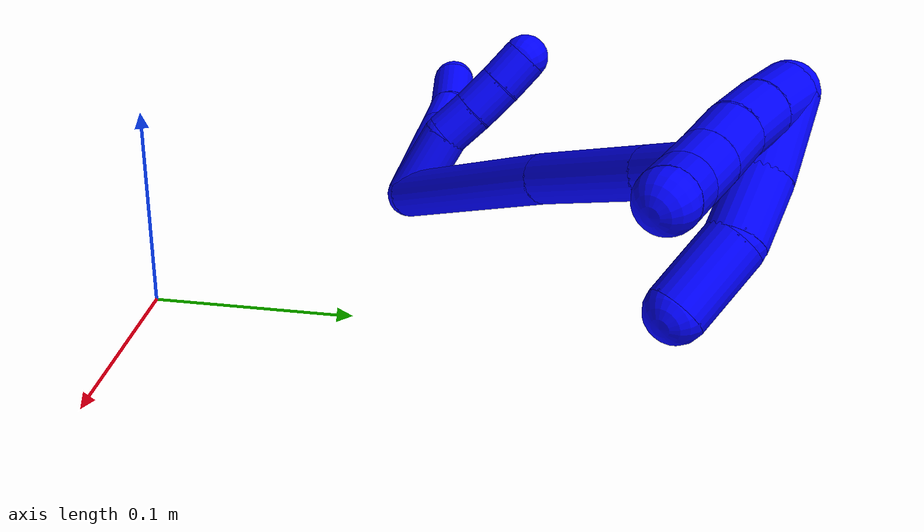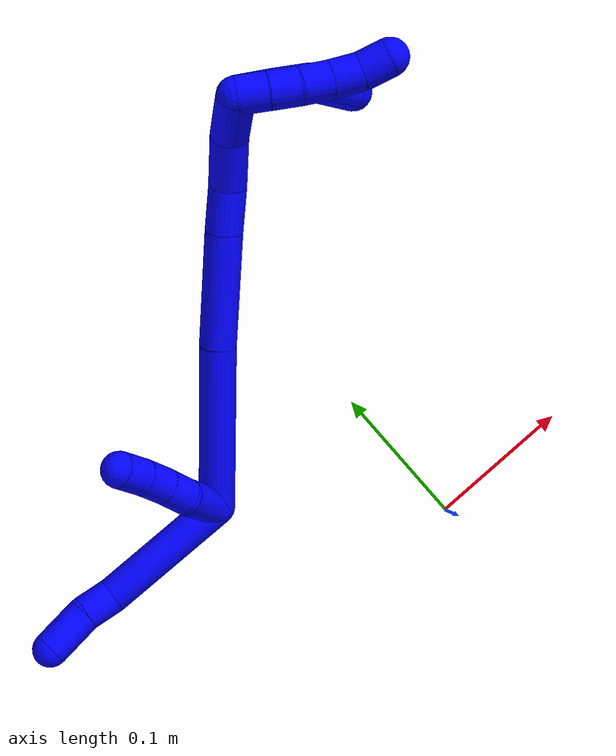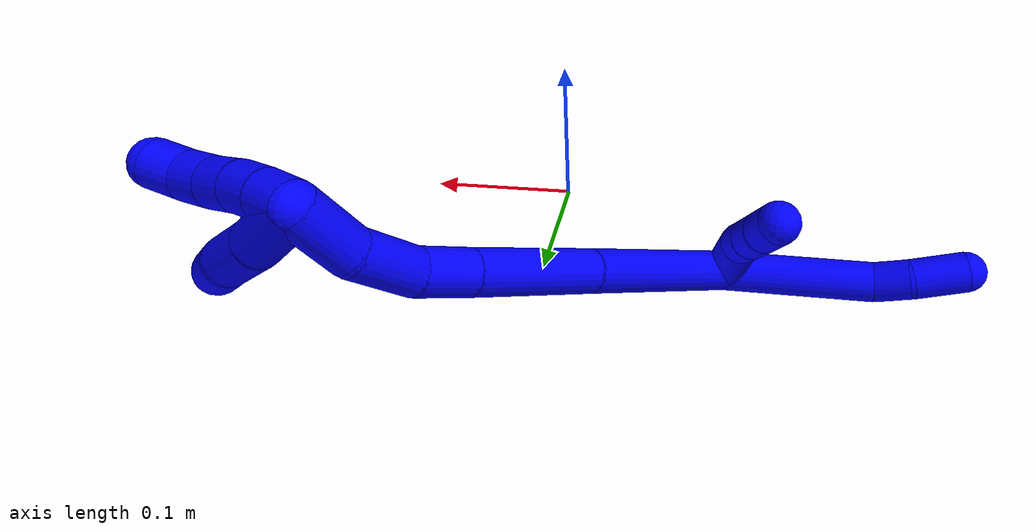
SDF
<sdf version="1.7">
 <world name="default">
  <model name="photoneo_s_sensor">
   <static>1</static>
   <pose>0 0 2 1.57079 1.57079 3.14159</pose>
   <link name="link">
    <inertial><mass>0.1</mass></inertial>
    <sensor name="sensor" type="depth">
     <update_rate>30</update_rate>
     <camera>
      <horizontal_fov>1.22</horizontal_fov>
      <image><width>1920</width><height>1200</height><format>B8G8R8</format></image>
      <clip><near>0.1</near><far>4</far></clip>
      <depth_camera><output>points</output></depth_camera>
     </camera>
     <plugin name="camera_plugin" filename="libgazebo_ros_depth_camera.so">
      <baseline>0.2</baseline>
      <alwaysOn>1</alwaysOn>
      <updateRate>0.0</updateRate>
      <cameraName>camera_ir</cameraName>
      <imageTopicName>/camera/color/image_raw</imageTopicName>
      <cameraInfoTopicName>/camera/color/camera_info</cameraInfoTopicName>
      <depthImageTopicName>/camera/depth/image_raw</depthImageTopicName>
      <depthImageCameraInfoTopicName>/camera/depth/camera_info</depthImageCameraInfoTopicName>
      <pointCloudTopicName>/camera/depth/points</pointCloudTopicName>
      <frameName>fr_optical</frameName>
      <pointCloudCutoff>0.1</pointCloudCutoff>
      <pointCloudCutoffMax>2.0</pointCloudCutoffMax>
      <distortionK1>0</distortionK1>
      <distortionK2>0</distortionK2>
      <distortionK3>0</distortionK3>
      <distortionT1>0</distortionT1>
      <distortionT2>0</distortionT2>
      <CxPrime>0</CxPrime>
      <Cx>0</Cx>
      <Cy>0</Cy>
      <focalLength>0</focalLength>
      <hackBaseline>0</hackBaseline>
     </plugin>
    </sensor>
   </link>
  </model>
  <model name="1">
   <static>0</static>
   <link name="1">
    <collision name="collision-cylinder-e_1_2_8">
     <pose>-0.021162 0.00352 0.041958 -0.083696 -0.465716 0.01986</pose>
     <geometry><cylinder><radius>0.0125</radius><length>0.094248</length></cylinder></geometry>
     <surface>
      <friction><ode><mu>1.16</mu><mu2>1.16</mu2><slip1>0</slip1><slip2>0</slip2></ode></friction>
      <contact><ode><kp>1e+06</kp><kd>1</kd><max_vel>0</max_vel><min_depth>0.001</min_depth></ode></contact>
     </surface>
    </collision>
    <visual name="visual-cylinder-e_1_2_8">
     <pose>-0.021162 0.00352 0.041958 -0.083696 -0.465716 0.01986</pose>
     <geometry><cylinder><radius>0.0125</radius><length>0.094248</length></cylinder></geometry>
     <material><ambient>0 0 1 1</ambient></material>
    </visual>
    <collision name="collision-cylinder-e_2_8_9">
     <pose>-0.045723 0.005019 0.09462 0.186563 -0.302492 -0.028515</pose>
     <geometry><cylinder><radius>0.0125</radius><length>0.022824</length></cylinder></geometry>
     <surface>
      <friction><ode><mu>1.16</mu><mu2>1.16</mu2><slip1>0</slip1><slip2>0</slip2></ode></friction>
      <contact><ode><kp>1e+06</kp><kd>1</kd><max_vel>0</max_vel><min_depth>0.001</min_depth></ode></contact>
     </surface>
    </collision>
    <visual name="visual-cylinder-e_2_8_9">
     <pose>-0.045723 0.005019 0.09462 0.186563 -0.302492 -0.028515</pose>
     <geometry><cylinder><radius>0.0125</radius><length>0.022824</length></cylinder></geometry>
     <material><ambient>0 0 1 1</ambient></material>
    </visual>
    <collision name="collision-cylinder-e_3_9_6">
     <pose>-0.057616 0.000915 0.119275 0.148234 -0.542016 -0.041256</pose>
     <geometry><cylinder><radius>0.0125</radius><length>0.032928</length></cylinder></geometry>
     <surface>
      <friction><ode><mu>1.16</mu><mu2>1.16</mu2><slip1>0</slip1><slip2>0</slip2></ode></friction>
      <contact><ode><kp>1e+06</kp><kd>1</kd><max_vel>0</max_vel><min_depth>0.001</min_depth></ode></contact>
     </surface>
    </collision>
    <visual name="visual-cylinder-e_3_9_6">
     <pose>-0.057616 0.000915 0.119275 0.148234 -0.542016 -0.041256</pose>
     <geometry><cylinder><radius>0.0125</radius><length>0.032928</length></cylinder></geometry>
     <material><ambient>0 0 1 1</ambient></material>
    </visual>
    <collision name="collision-cylinder-e_1_2_10">
     <pose>0.007877 -0.014712 0.010395 0.955661 0.412234 0.215713</pose>
     <geometry><cylinder><radius>0.0125</radius><length>0.039321</length></cylinder></geometry>
     <surface>
      <friction><ode><mu>1.16</mu><mu2>1.16</mu2><slip1>0</slip1><slip2>0</slip2></ode></friction>
      <contact><ode><kp>1e+06</kp><kd>1</kd><max_vel>0</max_vel><min_depth>0.001</min_depth></ode></contact>
     </surface>
    </collision>
    <visual name="visual-cylinder-e_1_2_10">
     <pose>0.007877 -0.014712 0.010395 0.955661 0.412234 0.215713</pose>
     <geometry><cylinder><radius>0.0125</radius><length>0.039321</length></cylinder></geometry>
     <material><ambient>0 0 1 1</ambient></material>
    </visual>
    <collision name="collision-cylinder-e_2_10_11">
     <pose>0.02157 -0.034638 0.0272 0.682989 0.613322 0.224144</pose>
     <geometry><cylinder><radius>0.0125</radius><length>0.020208</length></cylinder></geometry>
     <surface>
      <friction><ode><mu>1.16</mu><mu2>1.16</mu2><slip1>0</slip1><slip2>0</slip2></ode></friction>
      <contact><ode><kp>1e+06</kp><kd>1</kd><max_vel>0</max_vel><min_depth>0.001</min_depth></ode></contact>
     </surface>
    </collision>
    <visual name="visual-cylinder-e_2_10_11">
     <pose>0.02157 -0.034638 0.0272 0.682989 0.613322 0.224144</pose>
     <geometry><cylinder><radius>0.0125</radius><length>0.020208</length></cylinder></geometry>
     <material><ambient>0 0 1 1</ambient></material>
    </visual>
    <collision name="collision-cylinder-e_3_11_12">
     <pose>0.032713 -0.045385 0.040315 0.68975 0.549722 0.201916</pose>
     <geometry><cylinder><radius>0.0125</radius><length>0.020391</length></cylinder></geometry>
     <surface>
      <friction><ode><mu>1.16</mu><mu2>1.16</mu2><slip1>0</slip1><slip2>0</slip2></ode></friction>
      <contact><ode><kp>1e+06</kp><kd>1</kd><max_vel>0</max_vel><min_depth>0.001</min_depth></ode></contact>
     </surface>
    </collision>
    <visual name="visual-cylinder-e_3_11_12">
     <pose>0.032713 -0.045385 0.040315 0.68975 0.549722 0.201916</pose>
     <geometry><cylinder><radius>0.0125</radius><length>0.020391</length></cylinder></geometry>
     <material><ambient>0 0 1 1</ambient></material>
    </visual>
    <collision name="collision-cylinder-e_4_12_5">
     <pose>0.042676 -0.056558 0.053911 0.686034 0.480022 0.174359</pose>
     <geometry><cylinder><radius>0.0125</radius><length>0.020079</length></cylinder></geometry>
     <surface>
      <friction><ode><mu>1.16</mu><mu2>1.16</mu2><slip1>0</slip1><slip2>0</slip2></ode></friction>
      <contact><ode><kp>1e+06</kp><kd>1</kd><max_vel>0</max_vel><min_depth>0.001</min_depth></ode></contact>
     </surface>
    </collision>
    <visual name="visual-cylinder-e_4_12_5">
     <pose>0.042676 -0.056558 0.053911 0.686034 0.480022 0.174359</pose>
     <geometry><cylinder><radius>0.0125</radius><length>0.020079</length></cylinder></geometry>
     <material><ambient>0 0 1 1</ambient></material>
    </visual>
    <collision name="collision-cylinder-e_1_2_13">
     <pose>0.055097 -0.020605 -0.011291 2.07206 1.1677 1.67979</pose>
     <geometry><cylinder><radius>0.0125</radius><length>0.119796</length></cylinder></geometry>
     <surface>
      <friction><ode><mu>1.16</mu><mu2>1.16</mu2><slip1>0</slip1><slip2>0</slip2></ode></friction>
      <contact><ode><kp>1e+06</kp><kd>1</kd><max_vel>0</max_vel><min_depth>0.001</min_depth></ode></contact>
     </surface>
    </collision>
    <visual name="visual-cylinder-e_1_2_13">
     <pose>0.055097 -0.020605 -0.011291 2.07206 1.1677 1.67979</pose>
     <geometry><cylinder><radius>0.0125</radius><length>0.119796</length></cylinder></geometry>
     <material><ambient>0 0 1 1</ambient></material>
    </visual>
    <collision name="collision-cylinder-e_2_13_14">
     <pose>0.146075 -0.053953 -0.031792 2.1967 1.1578 1.81438</pose>
     <geometry><cylinder><radius>0.0125</radius><length>0.078348</length></cylinder></geometry>
     <surface>
      <friction><ode><mu>1.16</mu><mu2>1.16</mu2><slip1>0</slip1><slip2>0</slip2></ode></friction>
      <contact><ode><kp>1e+06</kp><kd>1</kd><max_vel>0</max_vel><min_depth>0.001</min_depth></ode></contact>
     </surface>
    </collision>
    <visual name="visual-cylinder-e_2_13_14">
     <pose>0.146075 -0.053953 -0.031792 2.1967 1.1578 1.81438</pose>
     <geometry><cylinder><radius>0.0125</radius><length>0.078348</length></cylinder></geometry>
     <material><ambient>0 0 1 1</ambient></material>
    </visual>
    <collision name="collision-cylinder-e_3_14_15">
     <pose>0.195837 -0.071828 -0.044997 2.23198 1.13265 1.83036</pose>
     <geometry><cylinder><radius>0.0125</radius><length>0.030659</length></cylinder></geometry>
     <surface>
      <friction><ode><mu>1.16</mu><mu2>1.16</mu2><slip1>0</slip1><slip2>0</slip2></ode></friction>
      <contact><ode><kp>1e+06</kp><kd>1</kd><max_vel>0</max_vel><min_depth>0.001</min_depth></ode></contact>
     </surface>
    </collision>
    <visual name="visual-cylinder-e_3_14_15">
     <pose>0.195837 -0.071828 -0.044997 2.23198 1.13265 1.83036</pose>
     <geometry><cylinder><radius>0.0125</radius><length>0.030659</length></cylinder></geometry>
     <material><ambient>0 0 1 1</ambient></material>
    </visual>
    <collision name="collision-cylinder-e_4_15_16">
     <pose>0.22428 -0.087345 -0.051837 1.83838 0.934117 1.16832</pose>
     <geometry><cylinder><radius>0.0125</radius><length>0.03622</length></cylinder></geometry>
     <surface>
      <friction><ode><mu>1.16</mu><mu2>1.16</mu2><slip1>0</slip1><slip2>0</slip2></ode></friction>
      <contact><ode><kp>1e+06</kp><kd>1</kd><max_vel>0</max_vel><min_depth>0.001</min_depth></ode></contact>
     </surface>
    </collision>
    <visual name="visual-cylinder-e_4_15_16">
     <pose>0.22428 -0.087345 -0.051837 1.83838 0.934117 1.16832</pose>
     <geometry><cylinder><radius>0.0125</radius><length>0.03622</length></cylinder></geometry>
     <material><ambient>0 0 1 1</ambient></material>
    </visual>
    <collision name="collision-cylinder-e_5_16_1">
     <pose>0.249177 -0.111543 -0.057549 1.77534 0.632233 0.764284</pose>
     <geometry><cylinder><radius>0.0125</radius><length>0.034977</length></cylinder></geometry>
     <surface>
      <friction><ode><mu>1.16</mu><mu2>1.16</mu2><slip1>0</slip1><slip2>0</slip2></ode></friction>
      <contact><ode><kp>1e+06</kp><kd>1</kd><max_vel>0</max_vel><min_depth>0.001</min_depth></ode></contact>
     </surface>
    </collision>
    <visual name="visual-cylinder-e_5_16_1">
     <pose>0.249177 -0.111543 -0.057549 1.77534 0.632233 0.764284</pose>
     <geometry><cylinder><radius>0.0125</radius><length>0.034977</length></cylinder></geometry>
     <material><ambient>0 0 1 1</ambient></material>
    </visual>
    <collision name="collision-cylinder-e_1_1_17">
     <pose>0.258778 -0.126117 -0.070359 3.06531 -0.073383 -1.53207</pose>
     <geometry><cylinder><radius>0.0125</radius><length>0.02</length></cylinder></geometry>
     <surface>
      <friction><ode><mu>1.16</mu><mu2>1.16</mu2><slip1>0</slip1><slip2>0</slip2></ode></friction>
      <contact><ode><kp>1e+06</kp><kd>1</kd><max_vel>0</max_vel><min_depth>0.001</min_depth></ode></contact>
     </surface>
    </collision>
    <visual name="visual-cylinder-e_1_1_17">
     <pose>0.258778 -0.126117 -0.070359 3.06531 -0.073383 -1.53207</pose>
     <geometry><cylinder><radius>0.0125</radius><length>0.02</length></cylinder></geometry>
     <material><ambient>0 0 1 1</ambient></material>
    </visual>
    <collision name="collision-cylinder-e_2_17_18">
     <pose>0.257422 -0.127032 -0.090282 3.12606 -0.062381 -2.6536</pose>
     <geometry><cylinder><radius>0.0125</radius><length>0.02</length></cylinder></geometry>
     <surface>
      <friction><ode><mu>1.16</mu><mu2>1.16</mu2><slip1>0</slip1><slip2>0</slip2></ode></friction>
      <contact><ode><kp>1e+06</kp><kd>1</kd><max_vel>0</max_vel><min_depth>0.001</min_depth></ode></contact>
     </surface>
    </collision>
    <visual name="visual-cylinder-e_2_17_18">
     <pose>0.257422 -0.127032 -0.090282 3.12606 -0.062381 -2.6536</pose>
     <geometry><cylinder><radius>0.0125</radius><length>0.02</length></cylinder></geometry>
     <material><ambient>0 0 1 1</ambient></material>
    </visual>
    <collision name="collision-cylinder-e_3_18_19">
     <pose>0.256707 -0.126406 -0.110231 -3.06344 -0.009121 0.232258</pose>
     <geometry><cylinder><radius>0.0125</radius><length>0.02</length></cylinder></geometry>
     <surface>
      <friction><ode><mu>1.16</mu><mu2>1.16</mu2><slip1>0</slip1><slip2>0</slip2></ode></friction>
      <contact><ode><kp>1e+06</kp><kd>1</kd><max_vel>0</max_vel><min_depth>0.001</min_depth></ode></contact>
     </surface>
    </collision>
    <visual name="visual-cylinder-e_3_18_19">
     <pose>0.256707 -0.126406 -0.110231 -3.06344 -0.009121 0.232258</pose>
     <geometry><cylinder><radius>0.0125</radius><length>0.02</length></cylinder></geometry>
     <material><ambient>0 0 1 1</ambient></material>
    </visual>
    <collision name="collision-cylinder-e_4_19_20">
     <pose>0.257055 -0.125887 -0.130187 3.1154 0.043888 2.06551</pose>
     <geometry><cylinder><radius>0.0125</radius><length>0.02</length></cylinder></geometry>
     <surface>
      <friction><ode><mu>1.16</mu><mu2>1.16</mu2><slip1>0</slip1><slip2>0</slip2></ode></friction>
      <contact><ode><kp>1e+06</kp><kd>1</kd><max_vel>0</max_vel><min_depth>0.001</min_depth></ode></contact>
     </surface>
    </collision>
    <visual name="visual-cylinder-e_4_19_20">
     <pose>0.257055 -0.125887 -0.130187 3.1154 0.043888 2.06551</pose>
     <geometry><cylinder><radius>0.0125</radius><length>0.02</length></cylinder></geometry>
     <material><ambient>0 0 1 1</ambient></material>
    </visual>
    <collision name="collision-cylinder-e_5_20_4">
     <pose>0.259713 -0.12841 -0.149658 2.90751 0.223862 1.52578</pose>
     <geometry><cylinder><radius>0.0125</radius><length>0.02</length></cylinder></geometry>
     <surface>
      <friction><ode><mu>1.16</mu><mu2>1.16</mu2><slip1>0</slip1><slip2>0</slip2></ode></friction>
      <contact><ode><kp>1e+06</kp><kd>1</kd><max_vel>0</max_vel><min_depth>0.001</min_depth></ode></contact>
     </surface>
    </collision>
    <visual name="visual-cylinder-e_5_20_4">
     <pose>0.259713 -0.12841 -0.149658 2.90751 0.223862 1.52578</pose>
     <geometry><cylinder><radius>0.0125</radius><length>0.02</length></cylinder></geometry>
     <material><ambient>0 0 1 1</ambient></material>
    </visual>
    <collision name="collision-cylinder-e_1_1_21">
     <pose>0.260486 -0.114515 -0.075082 -2.50505 0.053392 -0.161739</pose>
     <geometry><cylinder><radius>0.0125</radius><length>0.03653</length></cylinder></geometry>
     <surface>
      <friction><ode><mu>1.16</mu><mu2>1.16</mu2><slip1>0</slip1><slip2>0</slip2></ode></friction>
      <contact><ode><kp>1e+06</kp><kd>1</kd><max_vel>0</max_vel><min_depth>0.001</min_depth></ode></contact>
     </surface>
    </collision>
    <visual name="visual-cylinder-e_1_1_21">
     <pose>0.260486 -0.114515 -0.075082 -2.50505 0.053392 -0.161739</pose>
     <geometry><cylinder><radius>0.0125</radius><length>0.03653</length></cylinder></geometry>
     <material><ambient>0 0 1 1</ambient></material>
    </visual>
    <collision name="collision-cylinder-e_2_21_22">
     <pose>0.261666 -0.096623 -0.102405 -2.63331 0.014171 -0.054541</pose>
     <geometry><cylinder><radius>0.0125</radius><length>0.028978</length></cylinder></geometry>
     <surface>
      <friction><ode><mu>1.16</mu><mu2>1.16</mu2><slip1>0</slip1><slip2>0</slip2></ode></friction>
      <contact><ode><kp>1e+06</kp><kd>1</kd><max_vel>0</max_vel><min_depth>0.001</min_depth></ode></contact>
     </surface>
    </collision>
    <visual name="visual-cylinder-e_2_21_22">
     <pose>0.261666 -0.096623 -0.102405 -2.63331 0.014171 -0.054541</pose>
     <geometry><cylinder><radius>0.0125</radius><length>0.028978</length></cylinder></geometry>
     <material><ambient>0 0 1 1</ambient></material>
    </visual>
    <collision name="collision-cylinder-e_3_22_3">
     <pose>0.25665 -0.081742 -0.129513 -2.64506 -0.307566 1.09763</pose>
     <geometry><cylinder><radius>0.0125</radius><length>0.034492</length></cylinder></geometry>
     <surface>
      <friction><ode><mu>1.16</mu><mu2>1.16</mu2><slip1>0</slip1><slip2>0</slip2></ode></friction>
      <contact><ode><kp>1e+06</kp><kd>1</kd><max_vel>0</max_vel><min_depth>0.001</min_depth></ode></contact>
     </surface>
    </collision>
    <visual name="visual-cylinder-e_3_22_3">
     <pose>0.25665 -0.081742 -0.129513 -2.64506 -0.307566 1.09763</pose>
     <geometry><cylinder><radius>0.0125</radius><length>0.034492</length></cylinder></geometry>
     <material><ambient>0 0 1 1</ambient></material>
    </visual>
    <collision name="collision-sphere-3">
     <pose>0.251429 -0.073912 -0.143965 0 -0 0</pose>
     <geometry><sphere><radius>0.0125</radius></sphere></geometry>
     <surface>
      <friction><ode><mu>1.16</mu><mu2>1.16</mu2><slip1>0</slip1><slip2>0</slip2></ode></friction>
      <contact><ode><kp>1e+06</kp><kd>1</kd><max_vel>0</max_vel><min_depth>0.001</min_depth></ode></contact>
     </surface>
    </collision>
    <visual name="visual-sphere-3">
     <pose>0.251429 -0.073912 -0.143965 0 -0 0</pose>
     <geometry><sphere><radius>0.0125</radius></sphere></geometry>
     <material><ambient>0 0 1 1</ambient></material>
    </visual>
    <collision name="collision-sphere-22">
     <pose>0.261872 -0.089572 -0.115061 0 -0 0</pose>
     <geometry><sphere><radius>0.0125</radius></sphere></geometry>
     <surface>
      <friction><ode><mu>1.16</mu><mu2>1.16</mu2><slip1>0</slip1><slip2>0</slip2></ode></friction>
      <contact><ode><kp>1e+06</kp><kd>1</kd><max_vel>0</max_vel><min_depth>0.001</min_depth></ode></contact>
     </surface>
    </collision>
    <visual name="visual-sphere-22">
     <pose>0.261872 -0.089572 -0.115061 0 -0 0</pose>
     <geometry><sphere><radius>0.0125</radius></sphere></geometry>
     <material><ambient>0 0 1 1</ambient></material>
    </visual>
    <collision name="collision-sphere-21">
     <pose>0.261461 -0.103674 -0.089749 0 -0 0</pose>
     <geometry><sphere><radius>0.0125</radius></sphere></geometry>
     <surface>
      <friction><ode><mu>1.16</mu><mu2>1.16</mu2><slip1>0</slip1><slip2>0</slip2></ode></friction>
      <contact><ode><kp>1e+06</kp><kd>1</kd><max_vel>0</max_vel><min_depth>0.001</min_depth></ode></contact>
     </surface>
    </collision>
    <visual name="visual-sphere-21">
     <pose>0.261461 -0.103674 -0.089749 0 -0 0</pose>
     <geometry><sphere><radius>0.0125</radius></sphere></geometry>
     <material><ambient>0 0 1 1</ambient></material>
    </visual>
    <collision name="collision-sphere-4">
     <pose>0.261933 -0.130672 -0.159143 0 -0 0</pose>
     <geometry><sphere><radius>0.0125</radius></sphere></geometry>
     <surface>
      <friction><ode><mu>1.16</mu><mu2>1.16</mu2><slip1>0</slip1><slip2>0</slip2></ode></friction>
      <contact><ode><kp>1e+06</kp><kd>1</kd><max_vel>0</max_vel><min_depth>0.001</min_depth></ode></contact>
     </surface>
    </collision>
    <visual name="visual-sphere-4">
     <pose>0.261933 -0.130672 -0.159143 0 -0 0</pose>
     <geometry><sphere><radius>0.0125</radius></sphere></geometry>
     <material><ambient>0 0 1 1</ambient></material>
    </visual>
    <collision name="collision-sphere-20">
     <pose>0.257493 -0.126149 -0.140174 0 -0 0</pose>
     <geometry><sphere><radius>0.0125</radius></sphere></geometry>
     <surface>
      <friction><ode><mu>1.16</mu><mu2>1.16</mu2><slip1>0</slip1><slip2>0</slip2></ode></friction>
      <contact><ode><kp>1e+06</kp><kd>1</kd><max_vel>0</max_vel><min_depth>0.001</min_depth></ode></contact>
     </surface>
    </collision>
    <visual name="visual-sphere-20">
     <pose>0.257493 -0.126149 -0.140174 0 -0 0</pose>
     <geometry><sphere><radius>0.0125</radius></sphere></geometry>
     <material><ambient>0 0 1 1</ambient></material>
    </visual>
    <collision name="collision-sphere-11">
     <pose>0.027386 -0.039853 0.033609 0 -0 0</pose>
     <geometry><sphere><radius>0.0125</radius></sphere></geometry>
     <surface>
      <friction><ode><mu>1.16</mu><mu2>1.16</mu2><slip1>0</slip1><slip2>0</slip2></ode></friction>
      <contact><ode><kp>1e+06</kp><kd>1</kd><max_vel>0</max_vel><min_depth>0.001</min_depth></ode></contact>
     </surface>
    </collision>
    <visual name="visual-sphere-11">
     <pose>0.027386 -0.039853 0.033609 0 -0 0</pose>
     <geometry><sphere><radius>0.0125</radius></sphere></geometry>
     <material><ambient>0 0 1 1</ambient></material>
    </visual>
    <collision name="collision-sphere-10">
     <pose>0.015754 -0.029423 0.02079 0 -0 0</pose>
     <geometry><sphere><radius>0.0125</radius></sphere></geometry>
     <surface>
      <friction><ode><mu>1.16</mu><mu2>1.16</mu2><slip1>0</slip1><slip2>0</slip2></ode></friction>
      <contact><ode><kp>1e+06</kp><kd>1</kd><max_vel>0</max_vel><min_depth>0.001</min_depth></ode></contact>
     </surface>
    </collision>
    <visual name="visual-sphere-10">
     <pose>0.015754 -0.029423 0.02079 0 -0 0</pose>
     <geometry><sphere><radius>0.0125</radius></sphere></geometry>
     <material><ambient>0 0 1 1</ambient></material>
    </visual>
    <collision name="collision-sphere-6">
     <pose>-0.066109 -0.001168 0.133225 0 -0 0</pose>
     <geometry><sphere><radius>0.0125</radius></sphere></geometry>
     <surface>
      <friction><ode><mu>1.16</mu><mu2>1.16</mu2><slip1>0</slip1><slip2>0</slip2></ode></friction>
      <contact><ode><kp>1e+06</kp><kd>1</kd><max_vel>0</max_vel><min_depth>0.001</min_depth></ode></contact>
     </surface>
    </collision>
    <visual name="visual-sphere-6">
     <pose>-0.066109 -0.001168 0.133225 0 -0 0</pose>
     <geometry><sphere><radius>0.0125</radius></sphere></geometry>
     <material><ambient>0 0 1 1</ambient></material>
    </visual>
    <collision name="collision-sphere-9">
     <pose>-0.049122 0.002999 0.105326 0 -0 0</pose>
     <geometry><sphere><radius>0.0125</radius></sphere></geometry>
     <surface>
      <friction><ode><mu>1.16</mu><mu2>1.16</mu2><slip1>0</slip1><slip2>0</slip2></ode></friction>
      <contact><ode><kp>1e+06</kp><kd>1</kd><max_vel>0</max_vel><min_depth>0.001</min_depth></ode></contact>
     </surface>
    </collision>
    <visual name="visual-sphere-9">
     <pose>-0.049122 0.002999 0.105326 0 -0 0</pose>
     <geometry><sphere><radius>0.0125</radius></sphere></geometry>
     <material><ambient>0 0 1 1</ambient></material>
    </visual>
    <collision name="collision-sphere-2">
     <geometry><sphere><radius>0.0125</radius></sphere></geometry>
     <surface>
      <friction><ode><mu>1.16</mu><mu2>1.16</mu2><slip1>0</slip1><slip2>0</slip2></ode></friction>
      <contact><ode><kp>1e+06</kp><kd>1</kd><max_vel>0</max_vel><min_depth>0.001</min_depth></ode></contact>
     </surface>
    </collision>
    <visual name="visual-sphere-2">
     <geometry><sphere><radius>0.0125</radius></sphere></geometry>
     <material><ambient>0 0 1 1</ambient></material>
    </visual>
    <collision name="collision-sphere-19">
     <pose>0.256616 -0.125626 -0.1202 0 -0 0</pose>
     <geometry><sphere><radius>0.0125</radius></sphere></geometry>
     <surface>
      <friction><ode><mu>1.16</mu><mu2>1.16</mu2><slip1>0</slip1><slip2>0</slip2></ode></friction>
      <contact><ode><kp>1e+06</kp><kd>1</kd><max_vel>0</max_vel><min_depth>0.001</min_depth></ode></contact>
     </surface>
    </collision>
    <visual name="visual-sphere-19">
     <pose>0.256616 -0.125626 -0.1202 0 -0 0</pose>
     <geometry><sphere><radius>0.0125</radius></sphere></geometry>
     <material><ambient>0 0 1 1</ambient></material>
    </visual>
    <collision name="collision-sphere-8">
     <pose>-0.042323 0.00704 0.083915 0 -0 0</pose>
     <geometry><sphere><radius>0.0125</radius></sphere></geometry>
     <surface>
      <friction><ode><mu>1.16</mu><mu2>1.16</mu2><slip1>0</slip1><slip2>0</slip2></ode></friction>
      <contact><ode><kp>1e+06</kp><kd>1</kd><max_vel>0</max_vel><min_depth>0.001</min_depth></ode></contact>
     </surface>
    </collision>
    <visual name="visual-sphere-8">
     <pose>-0.042323 0.00704 0.083915 0 -0 0</pose>
     <geometry><sphere><radius>0.0125</radius></sphere></geometry>
     <material><ambient>0 0 1 1</ambient></material>
    </visual>
    <collision name="collision-sphere-12">
     <pose>0.038039 -0.050917 0.047021 0 -0 0</pose>
     <geometry><sphere><radius>0.0125</radius></sphere></geometry>
     <surface>
      <friction><ode><mu>1.16</mu><mu2>1.16</mu2><slip1>0</slip1><slip2>0</slip2></ode></friction>
      <contact><ode><kp>1e+06</kp><kd>1</kd><max_vel>0</max_vel><min_depth>0.001</min_depth></ode></contact>
     </surface>
    </collision>
    <visual name="visual-sphere-12">
     <pose>0.038039 -0.050917 0.047021 0 -0 0</pose>
     <geometry><sphere><radius>0.0125</radius></sphere></geometry>
     <material><ambient>0 0 1 1</ambient></material>
    </visual>
    <collision name="collision-sphere-5">
     <pose>0.047312 -0.062199 0.060802 0 -0 0</pose>
     <geometry><sphere><radius>0.0125</radius></sphere></geometry>
     <surface>
      <friction><ode><mu>1.16</mu><mu2>1.16</mu2><slip1>0</slip1><slip2>0</slip2></ode></friction>
      <contact><ode><kp>1e+06</kp><kd>1</kd><max_vel>0</max_vel><min_depth>0.001</min_depth></ode></contact>
     </surface>
    </collision>
    <visual name="visual-sphere-5">
     <pose>0.047312 -0.062199 0.060802 0 -0 0</pose>
     <geometry><sphere><radius>0.0125</radius></sphere></geometry>
     <material><ambient>0 0 1 1</ambient></material>
    </visual>
    <collision name="collision-sphere-13">
     <pose>0.110194 -0.041211 -0.022581 0 -0 0</pose>
     <geometry><sphere><radius>0.0125</radius></sphere></geometry>
     <surface>
      <friction><ode><mu>1.16</mu><mu2>1.16</mu2><slip1>0</slip1><slip2>0</slip2></ode></friction>
      <contact><ode><kp>1e+06</kp><kd>1</kd><max_vel>0</max_vel><min_depth>0.001</min_depth></ode></contact>
     </surface>
    </collision>
    <visual name="visual-sphere-13">
     <pose>0.110194 -0.041211 -0.022581 0 -0 0</pose>
     <geometry><sphere><radius>0.0125</radius></sphere></geometry>
     <material><ambient>0 0 1 1</ambient></material>
    </visual>
    <collision name="collision-sphere-14">
     <pose>0.181955 -0.066695 -0.041003 0 -0 0</pose>
     <geometry><sphere><radius>0.0125</radius></sphere></geometry>
     <surface>
      <friction><ode><mu>1.16</mu><mu2>1.16</mu2><slip1>0</slip1><slip2>0</slip2></ode></friction>
      <contact><ode><kp>1e+06</kp><kd>1</kd><max_vel>0</max_vel><min_depth>0.001</min_depth></ode></contact>
     </surface>
    </collision>
    <visual name="visual-sphere-14">
     <pose>0.181955 -0.066695 -0.041003 0 -0 0</pose>
     <geometry><sphere><radius>0.0125</radius></sphere></geometry>
     <material><ambient>0 0 1 1</ambient></material>
    </visual>
    <collision name="collision-sphere-15">
     <pose>0.209718 -0.076961 -0.04899 0 -0 0</pose>
     <geometry><sphere><radius>0.0125</radius></sphere></geometry>
     <surface>
      <friction><ode><mu>1.16</mu><mu2>1.16</mu2><slip1>0</slip1><slip2>0</slip2></ode></friction>
      <contact><ode><kp>1e+06</kp><kd>1</kd><max_vel>0</max_vel><min_depth>0.001</min_depth></ode></contact>
     </surface>
    </collision>
    <visual name="visual-sphere-15">
     <pose>0.209718 -0.076961 -0.04899 0 -0 0</pose>
     <geometry><sphere><radius>0.0125</radius></sphere></geometry>
     <material><ambient>0 0 1 1</ambient></material>
    </visual>
    <collision name="collision-sphere-16">
     <pose>0.238842 -0.097729 -0.054684 0 -0 0</pose>
     <geometry><sphere><radius>0.0125</radius></sphere></geometry>
     <surface>
      <friction><ode><mu>1.16</mu><mu2>1.16</mu2><slip1>0</slip1><slip2>0</slip2></ode></friction>
      <contact><ode><kp>1e+06</kp><kd>1</kd><max_vel>0</max_vel><min_depth>0.001</min_depth></ode></contact>
     </surface>
    </collision>
    <visual name="visual-sphere-16">
     <pose>0.238842 -0.097729 -0.054684 0 -0 0</pose>
     <geometry><sphere><radius>0.0125</radius></sphere></geometry>
     <material><ambient>0 0 1 1</ambient></material>
    </visual>
    <collision name="collision-sphere-1">
     <pose>0.259511 -0.125357 -0.060415 0 -0 0</pose>
     <geometry><sphere><radius>0.0125</radius></sphere></geometry>
     <surface>
      <friction><ode><mu>1.16</mu><mu2>1.16</mu2><slip1>0</slip1><slip2>0</slip2></ode></friction>
      <contact><ode><kp>1e+06</kp><kd>1</kd><max_vel>0</max_vel><min_depth>0.001</min_depth></ode></contact>
     </surface>
    </collision>
    <visual name="visual-sphere-1">
     <pose>0.259511 -0.125357 -0.060415 0 -0 0</pose>
     <geometry><sphere><radius>0.0125</radius></sphere></geometry>
     <material><ambient>0 0 1 1</ambient></material>
    </visual>
    <collision name="collision-sphere-18">
     <pose>0.256798 -0.127187 -0.100262 0 -0 0</pose>
     <geometry><sphere><radius>0.0125</radius></sphere></geometry>
     <surface>
      <friction><ode><mu>1.16</mu><mu2>1.16</mu2><slip1>0</slip1><slip2>0</slip2></ode></friction>
      <contact><ode><kp>1e+06</kp><kd>1</kd><max_vel>0</max_vel><min_depth>0.001</min_depth></ode></contact>
     </surface>
    </collision>
    <visual name="visual-sphere-18">
     <pose>0.256798 -0.127187 -0.100262 0 -0 0</pose>
     <geometry><sphere><radius>0.0125</radius></sphere></geometry>
     <material><ambient>0 0 1 1</ambient></material>
    </visual>
    <collision name="collision-sphere-17">
     <pose>0.258045 -0.126877 -0.080303 0 -0 0</pose>
     <geometry><sphere><radius>0.0125</radius></sphere></geometry>
     <surface>
      <friction><ode><mu>1.16</mu><mu2>1.16</mu2><slip1>0</slip1><slip2>0</slip2></ode></friction>
      <contact><ode><kp>1e+06</kp><kd>1</kd><max_vel>0</max_vel><min_depth>0.001</min_depth></ode></contact>
     </surface>
    </collision>
    <visual name="visual-sphere-17">
     <pose>0.258045 -0.126877 -0.080303 0 -0 0</pose>
     <geometry><sphere><radius>0.0125</radius></sphere></geometry>
     <material><ambient>0 0 1 1</ambient></material>
    </visual>
    <inertial>
     <pose>0.119955 -0.055074 -0.023201 0 -0 0</pose>
     <mass>0.75</mass>
     <inertia>
      <ixx>0.000191</ixx>
      <ixy>0</ixy>
      <ixz>0</ixz>
      <iyy>0.000328</iyy>
      <iyz>0</iyz>
      <izz>-8.9e-05</izz>
     </inertia>
    </inertial>
   </link>
   <pose>-0.118792 0.106571 0.011729 -1.43186 -0.104247 1.08615</pose>
  </model>
 </world>
</sdf>
